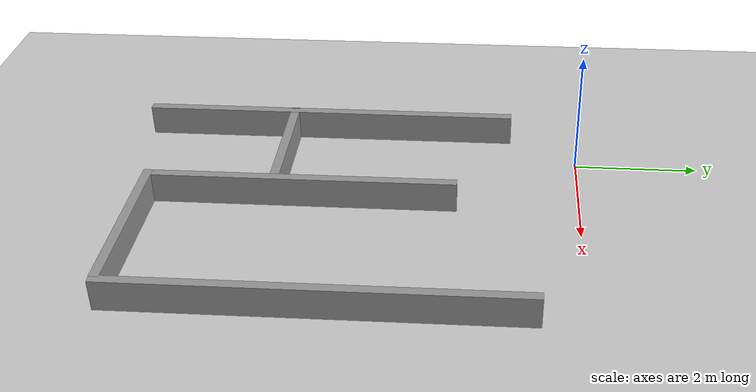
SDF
<sdf version="1.6">
 <world name="default">
  <light name="sun" type="directional">
   <pose>0 0 10 0 -0 0</pose>
   <diffuse>0.8 0.8 0.8 1</diffuse>
   <specular>0.2 0.2 0.2 1</specular>
   <attenuation>
    <range>1000</range>
    <constant>0.9</constant>
    <linear>0.01</linear>
    <quadratic>0.001</quadratic>
   </attenuation>
   <direction>-0.5 0.1 -0.9</direction>
  </light>
  <model name="ground_plane">
   <static>1</static>
   <link name="link">
    <collision name="collision">
     <geometry><plane><normal>0 0 1</normal><size>100 100</size></plane></geometry>
     <surface>
      <contact><collide_bitmask>65535</collide_bitmask></contact>
      <friction><ode><mu>100</mu><mu2>50</mu2></ode></friction>
     </surface>
    </collision>
    <visual name="visual">
     <cast_shadows>0</cast_shadows>
     <geometry><plane><normal>0 0 1</normal><size>100 100</size></plane></geometry>
     <material>
      <script><uri>file://media/materials/scripts/gazebo.material</uri><name>Gazebo/Grey</name></script>
     </material>
    </visual>
   </link>
  </model>
  <gravity>0 0 -9.8</gravity>
  <magnetic_field>6e-06 2.3e-05 -4.2e-05</magnetic_field>
  <atmosphere type="adiabatic"/>
  <physics name="default_physics" default="0" type="ode">
   <max_step_size>0.001</max_step_size>
   <real_time_factor>1</real_time_factor>
   <real_time_update_rate>1000</real_time_update_rate>
  </physics>
  <scene><ambient>0.4 0.4 0.4 1</ambient><background>0.7 0.7 0.7 1</background><shadows>1</shadows></scene>
  <audio><device>default</device></audio>
  <spherical_coordinates>
   <surface_model>EARTH_WGS84</surface_model>
   <latitude_deg>0</latitude_deg>
   <longitude_deg>0</longitude_deg>
   <elevation>0</elevation>
   <heading_deg>0</heading_deg>
  </spherical_coordinates>
  <model name="simple">
   <pose>1.65716 -3.99044 0 0 -0 0</pose>
   <link name="Wall_0">
    <collision name="Wall_0_Collision">
     <geometry><box><size>6.25 0.15 0.5</size></box></geometry>
     <pose>0 0 0.25 0 -0 0</pose>
    </collision>
    <visual name="Wall_0_Visual">
     <pose>0 0 0.25 0 -0 0</pose>
     <geometry><box><size>6.25 0.15 0.5</size></box></geometry>
     <material>
      <script><uri>file://media/materials/scripts/gazebo.material</uri><name>Gazebo/Grey</name></script>
      <ambient>1 1 1 1</ambient>
     </material>
     <meta><layer>0</layer></meta>
    </visual>
    <pose>-2.423 -0.217443 0 0 -0 1.5708</pose>
   </link>
   <link name="Wall_2">
    <collision name="Wall_2_Collision">
     <geometry><box><size>4.97991 0.15 0.5</size></box></geometry>
     <pose>0 0 0.25 0 -0 0</pose>
    </collision>
    <visual name="Wall_2_Visual">
     <pose>0 0 0.25 0 -0 0</pose>
     <geometry><box><size>4.97991 0.15 0.5</size></box></geometry>
     <material>
      <script><uri>file://media/materials/scripts/gazebo.material</uri><name>Gazebo/Grey</name></script>
      <ambient>1 1 1 1</ambient>
     </material>
     <meta><layer>0</layer></meta>
    </visual>
    <pose>-0.297 -0.428557 0 0 -0 -1.5708</pose>
   </link>
   <link name="Wall_4">
    <collision name="Wall_4_Collision">
     <geometry><box><size>6.25 0.15 0.5</size></box></geometry>
     <pose>0 0 0.25 0 -0 0</pose>
    </collision>
    <visual name="Wall_4_Visual">
     <pose>0 0 0.25 0 -0 0</pose>
     <geometry><box><size>6.25 0.15 0.5</size></box></geometry>
     <material>
      <script><uri>file://media/materials/scripts/gazebo.material</uri><name>Gazebo/Grey</name></script>
      <ambient>1 1 1 1</ambient>
     </material>
     <meta><layer>0</layer></meta>
    </visual>
    <pose>2.423 0.217443 0 0 -0 -1.5708</pose>
   </link>
   <link name="Wall_6">
    <collision name="Wall_6_Collision">
     <geometry><box><size>2.75 0.15 0.5</size></box></geometry>
     <pose>0 0 0.25 0 -0 0</pose>
    </collision>
    <visual name="Wall_6_Visual">
     <pose>0 0 0.25 0 -0 0</pose>
     <geometry><box><size>2.75 0.15 0.5</size></box></geometry>
     <material>
      <script><uri>file://media/materials/scripts/gazebo.material</uri><name>Gazebo/Grey</name></script>
      <ambient>1 1 1 1</ambient>
     </material>
     <meta><layer>0</layer></meta>
    </visual>
    <pose>1.003 -2.84356 0 0 -0 0</pose>
   </link>
   <link name="Wall_8">
    <collision name="Wall_8_Collision">
     <geometry><box><size>2.25 0.15 0.5</size></box></geometry>
     <pose>0 0 0.25 0 -0 0</pose>
    </collision>
    <visual name="Wall_8_Visual">
     <pose>0 0 0.25 0 -0 0</pose>
     <geometry><box><size>2.25 0.15 0.5</size></box></geometry>
     <material>
      <script><uri>file://media/materials/scripts/gazebo.material</uri><name>Gazebo/Grey</name></script>
      <ambient>1 1 1 1</ambient>
     </material>
     <meta><layer>0</layer></meta>
    </visual>
    <pose>-1.36 -0.823557 0 0 -0 0</pose>
   </link>
   <static>1</static>
  </model>
 </world>
</sdf>
